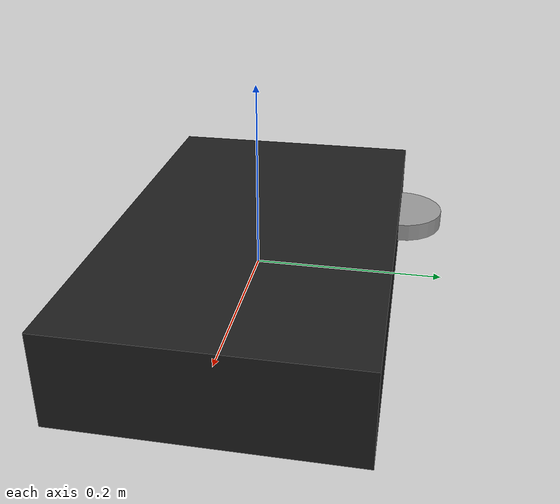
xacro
<?xml version="1.0"?>
<robot xmlns:xacro="http://ros.org/wiki/xacro" name="mr_buggy3">

  <link name="base_link">
    <visual>
      <geometry>
        <box size="0.5 0.3 0.1"/>
      </geometry>
      <material name="black"/>
    </visual>
    <collision>
      <geometry>
        <box size="0.5 0.3 0.1"/>
      </geometry>
    </collision>
    <inertial>
      <mass value="2.0"/>
      <origin xyz="0 0 0" rpy="0 0 0"/>
      <inertia ixx="0.1" ixy="0.0" ixz="0.0"
               iyy="0.1" iyz="0.0"
               izz="0.1"/>
    </inertial>
  </link>

  <!-- Example wheel -->
  <link name="wheel_left">
    <visual>
      <geometry>
        <cylinder radius="0.05" length="0.02"/>
      </geometry>
      <material name="gray"/>
    </visual>
  </link>

  <joint name="left_wheel_joint" type="continuous">
    <parent link="base_link"/>
    <child link="wheel_left"/>
    <origin xyz="-0.15 0.15 0" rpy="0 0 0"/>
    <axis xyz="0 1 0"/>
  </joint>

</robot>
